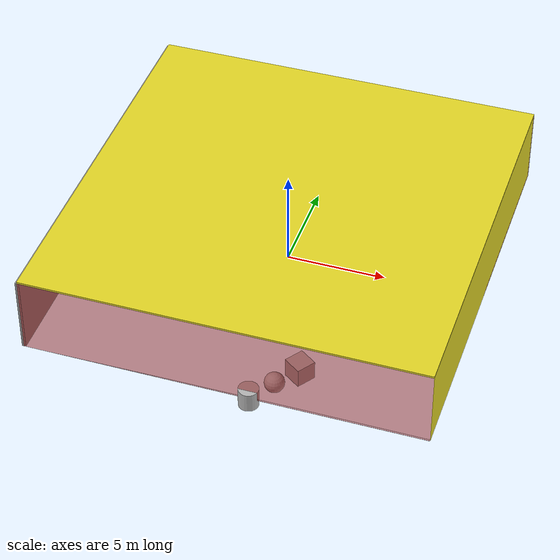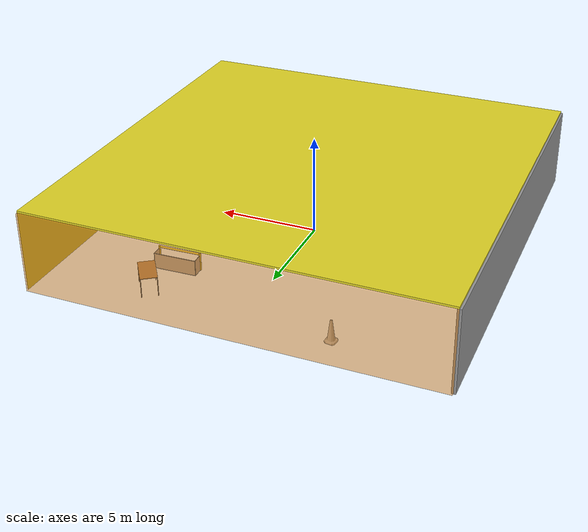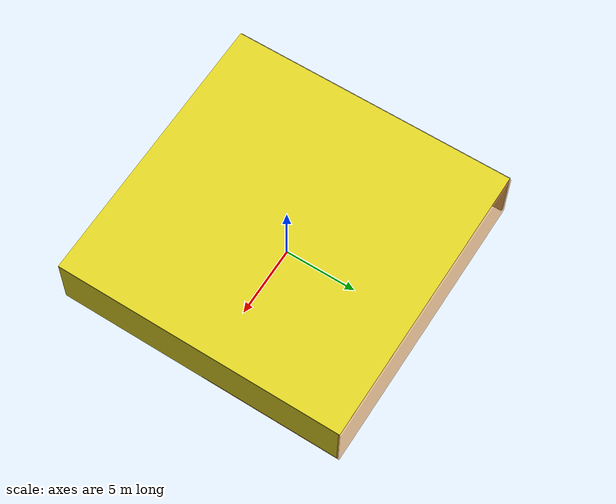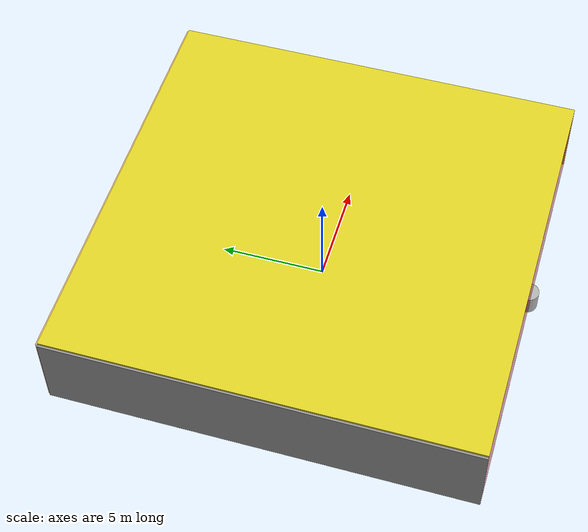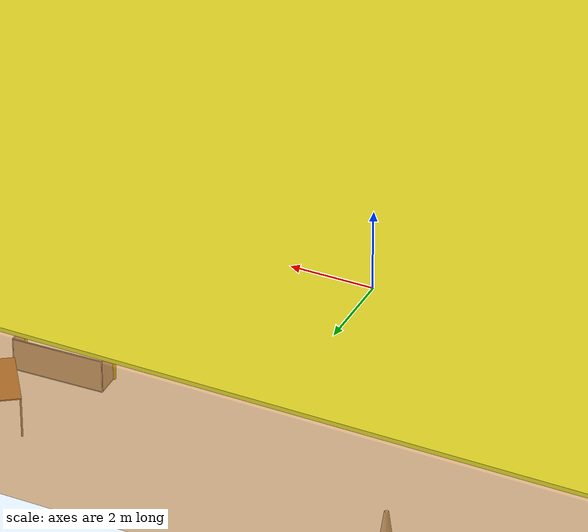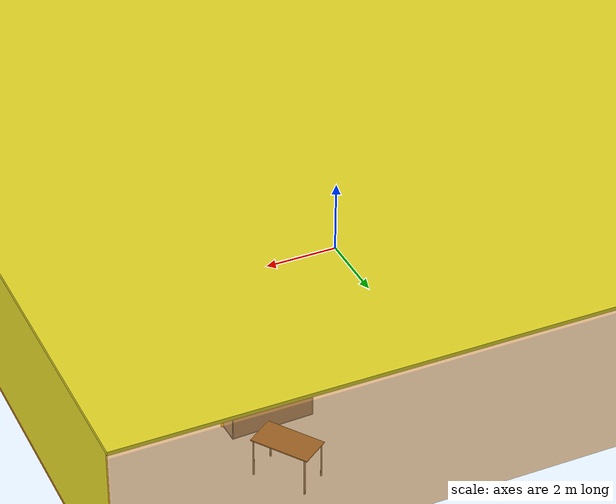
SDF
<sdf version="1.4">
 <world name="default">
  <physics type="ode">
   <max_step_size>0.001</max_step_size>
   <real_time_factor>1</real_time_factor>
   <real_time_update_rate>1000</real_time_update_rate>
   <gravity>0 0 -9.8</gravity>
  </physics>
  <scene><ambient>0.4 0.4 0.4 1</ambient><background>0.7 0.7 0.7 1</background><shadows>1</shadows></scene>
  <model name="Surrounding">
   <static>1</static>
   <link name="Ceiling">
    <collision name="Ceiling_Collision"><geometry><box><size>20 20 0.1</size></box></geometry></collision>
    <visual name="Ceiling_Visual">
     <geometry><box><size>20 20 0.1</size></box></geometry>
     <material>
      <script><uri>file://media/materials/scripts/gazebo.material</uri><name>Gazebo/Yellow</name></script>
     </material>
    </visual>
    <pose>0 0 4.05 0 0 0</pose>
   </link>
   <link name="Wall_South">
    <collision name="Wall_South_Collision">
     <geometry><box><size>20 0 4</size></box></geometry>
     <pose>0 0 2 0 -0 0</pose>
    </collision>
    <visual name="Wall_South_Visual">
     <pose>0 0 2 0 -0 0</pose>
     <geometry><box><size>20 0 4</size></box></geometry>
     <material>
      <script><uri>file://media/materials/scripts/gazebo.material</uri><name>Gazebo/RedTransparent</name></script>
     </material>
    </visual>
    <velocity_decay><linear>0</linear><angular>0</angular></velocity_decay>
    <pose>0 -10 0 0 -0 0</pose>
   </link>
   <link name="Wall_East">
    <collision name="Wall_21_Collision">
     <geometry><box><size>20 0 4</size></box></geometry>
     <pose>0 0 2 0 -0 0</pose>
    </collision>
    <visual name="Wall_21_Visual">
     <pose>0 0 2 0 -0 0</pose>
     <geometry><box><size>20 0 4</size></box></geometry>
     <material>
      <script><uri>file://media/materials/scripts/gazebo.material</uri><name>Gazebo/YellowGlow</name></script>
     </material>
    </visual>
    <velocity_decay><linear>0</linear><angular>0</angular></velocity_decay>
    <pose>10 0 0 0 -0 1.5708</pose>
   </link>
   <link name="Wall_North">
    <collision name="Wall_22_Collision">
     <geometry><box><size>20 0.2 4</size></box></geometry>
     <pose>0 0 2 0 -0 0</pose>
    </collision>
    <visual name="Wall_22_Visual">
     <pose>0 0 2 0 -0 0</pose>
     <geometry><box><size>20 0.2 4</size></box></geometry>
     <material>
      <script>
       <uri>file://media/materials/scripts/gazebo.material</uri>
       <name>Gazebo/OrangeTransparent</name>
      </script>
     </material>
    </visual>
    <velocity_decay><linear>0</linear><angular>0</angular></velocity_decay>
    <pose>0 10 0 0 -0 0</pose>
   </link>
   <link name="Wall_West">
    <collision name="Wall_23_Collision">
     <geometry><box><size>20 0.2 4</size></box></geometry>
     <pose>0 0 2 0 -0 0</pose>
    </collision>
    <visual name="Wall_23_Visual">
     <pose>0 0 2 0 -0 0</pose>
     <geometry><box><size>20 0.2 4</size></box></geometry>
     <material>
      <script><uri>file://media/materials/scripts/gazebo.material</uri><name>Gazebo/GreyGradientSky</name></script>
     </material>
    </visual>
    <velocity_decay><linear>0</linear><angular>0</angular></velocity_decay>
    <pose>-10 0 0 0 0 -1.5708</pose>
   </link>
   <link name="Ground_link">
    <collision name="collision">
     <pose>0 0 .05 0 -0 0</pose>
     <geometry><box><size>20 20 0.1</size></box></geometry>
    </collision>
    <visual name="visual">
     <pose>0 0 .05 0 -0 0</pose>
     <geometry><box><size>20 20 0.1</size></box></geometry>
     <material>
      <script><uri>file://media/materials/scripts/gazebo.material</uri><name>Gazebo/RedTransparent</name></script>
     </material>
    </visual>
   </link>
   <static>1</static>
  </model>
  <spherical_coordinates>
   <surface_model>EARTH_WGS84</surface_model>
   <latitude_deg>0</latitude_deg>
   <longitude_deg>0</longitude_deg>
   <elevation>0</elevation>
   <heading_deg>0</heading_deg>
  </spherical_coordinates>
  <light name="lightball_0" type="diffuse">
   <diffuse>0.8 0.8 0.8 1</diffuse>
   <specular>0.2 0.2 0.2 1</specular>
   <attenuation>
    <range>100</range>
    <constant>0.7</constant>
    <linear>0.01</linear>
    <quadratic>0.001</quadratic>
   </attenuation>
   <direction>-0.5 0.1 -0.9</direction>
   <pose>5.30388405759 -6.22127089845 1.14882936011 0 0 0</pose>
  </light>
  <light name="lightball_1" type="diffuse">
   <diffuse>0.8 0.8 0.8 1</diffuse>
   <specular>0.2 0.2 0.2 1</specular>
   <attenuation>
    <range>100</range>
    <constant>0.7</constant>
    <linear>0.01</linear>
    <quadratic>0.001</quadratic>
   </attenuation>
   <direction>-0.5 0.1 -0.9</direction>
   <pose>-4.18505534235 3.87141775298 1.69824834797 0 0 0</pose>
  </light>
  <include>
   <uri>model://construction_cone</uri>
   <pose>-8.4310269747 0.925335822381 0 0 0 1.48681754329</pose>
  </include>
  <include>
   <uri>model://construction_cone</uri>
   <pose>-4.49926675999 2.62654357599 0 0 0 2.33060826573</pose>
  </include>
  <include>
   <uri>model://construction_cone</uri>
   <pose>-4.24438480994 8.51623000587 0 0 0 3.01570066393</pose>
  </include>
  <include>
   <uri>model://textured_shapes</uri>
   <pose>2.11316378137 -8.61333037941 0 0 0 2.53366421489</pose>
  </include>
  <include>
   <uri>model://robocup_3Dsim_goal</uri>
   <pose>1.92116135344 1.2073280497 0 0 0 1.28890983792</pose>
  </include>
  <include>
   <uri>model://textured_shapes</uri>
   <pose>4.52198335187 1.61187157191 0 0 0 0.566913433774</pose>
  </include>
  <include>
   <uri>model://robocup_3Dsim_goal</uri>
   <pose>4.56469742859 5.52842958027 0 0 0 1.6037163022</pose>
  </include>
  <include><uri>model://table</uri><pose>4.95802989248 7.82195432435 0 0 0 2.17734490802</pose></include>
 </world>
</sdf>

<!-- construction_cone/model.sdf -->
<sdf version="1.5">
  <model name="Construction Cone">
    <link name="link">
      <collision name="collision">
        <geometry>
          <mesh>
            <scale>10 10 10</scale>
            <uri>file://isr-testbed/construction_cone/meshes/construction_cone.dae</uri>
          </mesh>
        </geometry>
      </collision>
      <visual name="visual">
        <geometry>
          <mesh>
            <scale>10 10 10</scale>
            <uri>file://isr-testbed/construction_cone/meshes/construction_cone.dae</uri>
          </mesh>
        </geometry>
      </visual>
    </link>
  </model>
</sdf>

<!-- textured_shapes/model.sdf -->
<sdf version="1.6">
  <model name="textured_shapes">
    <pose>0 0 0.5 0 0 0</pose>
    <link name="box">
      <pose>0 -1.5 0 0 0 0</pose>
      <collision name="collision">
        <geometry>
          <box>
            <size>1 1 1</size>
          </box>
        </geometry>
      </collision>
      <visual name="visual">
        <geometry>
          <box>
            <size>1 1 1</size>
          </box>
        </geometry>
        <material>
          <script>
            <uri>model://../model_source/models/textured_shapes/materials/scripts</uri>
            <uri>model://../model_source/models/textured_shapes/materials/textures</uri>
            <name>TexturedShape/Squares</name>
          </script>
        </material>
      </visual>
    </link>
    <link name="sphere">
      <collision name="collision">
        <geometry>
          <sphere>
            <radius>0.5</radius>
          </sphere>
        </geometry>
      </collision>
      <visual name="visual">
        <geometry>
          <sphere>
            <radius>0.5</radius>
          </sphere>
        </geometry>
        <material>
          <script>
            <uri>model://../model_source/models/textured_shapes/materials/scripts</uri>
            <uri>model://../model_source/models/textured_shapes/materials/textures</uri>
            <name>TexturedShape/Squares</name>
          </script>
        </material>
      </visual>
    </link>
    <link name="cylinder">
      <pose>0 1.5 0 0 0 0</pose>
      <collision name="collision">
        <geometry>
          <cylinder>
            <radius>0.5</radius>
            <length>1</length>
          </cylinder>
        </geometry>
      </collision>
      <visual name="visual">
        <geometry>
          <cylinder>
            <radius>0.5</radius>
            <length>1</length>
          </cylinder>
        </geometry>
        <material>
          <script>
            <uri>model://../model_source/models/textured_shapes/materials/scripts</uri>
            <uri>model://../model_source/models/textured_shapes/materials/textures</uri>
            <name>TexturedShape/Squares</name>
          </script>
        </material>
      </visual>
    </link>
  </model>
</sdf>

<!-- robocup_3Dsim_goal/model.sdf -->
<sdf version="1.5">
  <model name="robocup_3d_goal">
    <static>true</static>
    <link name="left_post">
      <pose>0 1.05 0.45 0 0 0</pose>
      <collision name="collision">
        <geometry>
          <cylinder>
            <radius>0.05</radius>
            <length>0.9</length>
          </cylinder>
        </geometry>
      </collision>
      <visual name="visual">
        <geometry>
          <cylinder>
            <radius>0.05</radius>
            <length>0.9</length>
          </cylinder>
        </geometry>
        <material>
          <script>
            <uri>file://media/materials/scripts/gazebo.material</uri>
            <name>Gazebo/ZincYellow</name>
          </script>
        </material>
      </visual>
    </link>
    <link name="left_support_horiz_lower">
      <pose>0.30 1.05 0.01 0 0 0</pose>
      <collision name="collision">
        <geometry>
          <box>
            <size>0.50 0.02 0.02</size>
          </box>
        </geometry>
      </collision>
      <visual name="visual">
        <geometry>
          <box>
            <size>0.50 0.02 0.02</size>
          </box>
        </geometry>
        <material>
          <script>
            <uri>file://media/materials/scripts/gazebo.material</uri>
            <name>Gazebo/White</name>
          </script>
        </material>
      </visual>
    </link>
    <link name="left_support_horiz_upper">
      <pose>0.30 1.05 0.79 0 0 0</pose>
      <collision name="collision">
        <geometry>
          <box>
            <size>0.50 0.02 0.02</size>
          </box>
        </geometry>
      </collision>
      <visual name="visual">
        <geometry>
          <box>
            <size>0.50 0.02 0.02</size>
          </box>
        </geometry>
        <material>
          <script>
            <uri>file://media/materials/scripts/gazebo.material</uri>
            <name>Gazebo/White</name>
          </script>
        </material>
      </visual>
    </link>
    <link name="left_support_vertical">
      <pose>0.56 1.05 0.4 0 1.5708 0</pose>
      <collision name="collision">
        <geometry>
          <box>
            <size>0.80 0.02 0.02</size>
          </box>
        </geometry>
      </collision>
      <visual name="visual">
        <geometry>
          <box>
            <size>0.80 0.02 0.02</size>
          </box>
        </geometry>
        <material>
          <script>
            <uri>file://media/materials/scripts/gazebo.material</uri>
            <name>Gazebo/White</name>
          </script>
        </material>
      </visual>
    </link>
    <link name="right_support_horiz_lower">
      <pose>0.30 -1.05 0.01 0 0 0</pose>
      <collision name="collision">
        <geometry>
          <box>
            <size>0.50 0.02 0.02</size>
          </box>
        </geometry>
      </collision>
      <visual name="visual">
        <geometry>
          <box>
            <size>0.50 0.02 0.02</size>
          </box>
        </geometry>
        <material>
          <script>
            <uri>file://media/materials/scripts/gazebo.material</uri>
            <name>Gazebo/White</name>
          </script>
        </material>
      </visual>
    </link>
    <link name="right_support_horiz_upper">
      <pose>0.30 -1.05 0.79 0 0 0</pose>
      <collision name="collision">
        <geometry>
          <box>
            <size>0.50 0.02 0.02</size>
          </box>
        </geometry>
      </collision>
      <visual name="visual">
        <geometry>
          <box>
            <size>0.50 0.02 0.02</size>
          </box>
        </geometry>
        <material>
          <script>
            <uri>file://media/materials/scripts/gazebo.material</uri>
            <name>Gazebo/White</name>
          </script>
        </material>
      </visual>
    </link>
    <link name="right_support_vertical">
      <pose>0.56 -1.05 0.4 0 1.5708 0</pose>
      <collision name="collision">
        <geometry>
          <box>
            <size>0.80 0.02 0.02</size>
          </box>
        </geometry>
      </collision>
      <visual name="visual">
        <geometry>
          <box>
            <size>0.80 0.02 0.02</size>
          </box>
        </geometry>
        <material>
          <script>
            <uri>file://media/materials/scripts/gazebo.material</uri>
            <name>Gazebo/White</name>
          </script>
        </material>
      </visual>
    </link>
    <link name="center_support_horiz_lower">
      <pose>0.56 0 0.01 0 1.5708 0</pose>
      <collision name="collision">
        <geometry>
          <box>
            <size>0.02 2.08 0.02</size>
          </box>
        </geometry>
      </collision>
      <visual name="visual">
        <geometry>
          <box>
            <size>0.02 2.08 0.02</size>
          </box>
        </geometry>
        <material>
          <script>
            <uri>file://media/materials/scripts/gazebo.material</uri>
            <name>Gazebo/White</name>
          </script>
        </material>
      </visual>
    </link>
    <link name="center_support_horiz_upper">
      <pose>0.56 0 0.79 0 1.5708 0</pose>
      <collision name="collision">
        <geometry>
          <box>
            <size>0.02 2.08 0.02</size>
          </box>
        </geometry>
      </collision>
      <visual name="visual">
        <geometry>
          <box>
            <size>0.02 2.08 0.02</size>
          </box>
        </geometry>
        <material>
          <script>
            <uri>file://media/materials/scripts/gazebo.material</uri>
            <name>Gazebo/White</name>
          </script>
        </material>
      </visual>
    </link>
    <link name="right_post">
      <pose>0 -1.05 0.45 0 0 0</pose>
      <collision name="collision">
        <geometry>
          <cylinder>
            <radius>0.05</radius>
            <length>0.9</length>
          </cylinder>
        </geometry>
      </collision>
      <visual name="visual">
        <geometry>
          <cylinder>
            <radius>0.05</radius>
            <length>0.9</length>
          </cylinder>
        </geometry>
        <material>
          <script>
            <uri>file://media/materials/scripts/gazebo.material</uri>
            <name>Gazebo/ZincYellow</name>
          </script>
        </material>
      </visual>
    </link>
    <link name="crossbar">
      <pose>0 0 0.85 1.57 1.57 0</pose>
      <collision name="collision">
        <geometry>
          <cylinder>
            <radius>0.05</radius>
            <length>2.0</length>
          </cylinder>
        </geometry>
      </collision>
      <visual name="visual">
        <geometry>
          <cylinder>
            <radius>0.05</radius>
            <length>2.0</length>
          </cylinder>
        </geometry>
        <material>
          <script>
            <uri>file://media/materials/scripts/gazebo.material</uri>
            <name>Gazebo/ZincYellow</name>
          </script>
        </material>
      </visual>
    </link>
    <link name="center_net">
      <pose>0.56 0 0.40 0 0 0</pose>
      <collision name="collision">
        <geometry>
          <box>
            <size>0.01 2.1 0.80</size>
          </box>
        </geometry>
      </collision>
      <visual name="visual">
        <geometry>
          <box>
            <size>0.01 2.1 0.80</size>
          </box>
        </geometry>
        <material>
          <script>
            <uri>model://../model_source/models/robocup09_spl_field/materials/scripts/</uri>
            <uri>model://../model_source/models/robocup09_spl_field/materials/textures/</uri>
            <name>RoboCup/Net</name>
          </script>
        </material>
      </visual>
    </link>
    <link name="left_net">
      <pose>0.30 1.05 0.40 0 0 0</pose>
      <collision name="collision">
        <geometry>
          <box>
            <size>0.50 0.01 0.76</size>
          </box>
        </geometry>
      </collision>
      <visual name="visual">
        <geometry>
          <box>
            <size>0.50 0.01 0.76</size>
          </box>
        </geometry>
        <material>
          <script>
            <uri>model://../model_source/models/robocup09_spl_field/materials/scripts/</uri>
            <uri>model://../model_source/models/robocup09_spl_field/materials/textures/</uri>
            <name>RoboCup/Net</name>
          </script>
        </material>
      </visual>
    </link>
    <link name="right_net">
      <pose>0.30 -1.05 0.40 0 0 0</pose>
      <collision name="collision">
        <geometry>
          <box>
            <size>0.50 0.01 0.76</size>
          </box>
        </geometry>
      </collision>
      <visual name="visual">
        <geometry>
          <box>
            <size>0.50 0.01 0.76</size>
          </box>
        </geometry>
        <material>
          <script>
            <uri>model://../model_source/models/robocup09_spl_field/materials/scripts/</uri>
            <uri>model://../model_source/models/robocup09_spl_field/materials/textures/</uri>
            <name>RoboCup/Net</name>
          </script>
        </material>
      </visual>
    </link>
  </model>
</sdf>

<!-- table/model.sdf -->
<sdf version="1.5">
  <model name="table">
    <static>true</static>
    <link name="link">
      <collision name="surface">
        <pose>0 0 1.0 0 0 0</pose>
        <geometry>
          <box>
            <size>1.5 0.8 0.03</size>
          </box>
        </geometry>
        <surface>
          <friction>
            <ode>
              <mu>0.6</mu>
              <mu2>0.6</mu2>
            </ode>
          </friction>
        </surface>
      </collision>
      <visual name="visual1">
        <pose>0 0 1.0 0 0 0</pose>
        <geometry>
          <box>
            <size>1.5 0.8 0.03</size>
          </box>
        </geometry>
        <material>
          <script>
            <uri>model://media/materials/scripts/gazebo.material</uri>
            <name>Gazebo/Wood</name>
          </script>
        </material>
      </visual>
      <collision name="front_left_leg">
        <pose>0.68 0.38 0.5 0 0 0</pose>
        <geometry>
          <cylinder>
            <radius>0.02</radius>
            <length>1.0</length>
          </cylinder>
        </geometry>
      </collision>
      <visual name="front_left_leg">
        <pose>0.68 0.38 0.5 0 0 0</pose>
        <geometry>
          <cylinder>
            <radius>0.02</radius>
            <length>1.0</length>
          </cylinder>
        </geometry>
        <material>
          <script>
            <uri>model://media/materials/scripts/gazebo.material</uri>
            <name>Gazebo/Grey</name>
          </script>
        </material>
      </visual>
      <collision name="front_right_leg">
        <pose>0.68 -0.38 0.5 0 0 0</pose>
        <geometry>
          <cylinder>
            <radius>0.02</radius>
            <length>1.0</length>
          </cylinder>
        </geometry>
      </collision>
      <visual name="front_right_leg">
        <pose>0.68 -0.38 0.5 0 0 0</pose>
        <geometry>
          <cylinder>
            <radius>0.02</radius>
            <length>1.0</length>
          </cylinder>
        </geometry>
        <material>
          <script>
            <uri>model://media/materials/scripts/gazebo.material</uri>
            <name>Gazebo/Grey</name>
          </script>
        </material>
      </visual>
      <collision name="back_right_leg">
        <pose>-0.68 -0.38 0.5 0 0 0</pose>
        <geometry>
          <cylinder>
            <radius>0.02</radius>
            <length>1.0</length>
          </cylinder>
        </geometry>
      </collision>
      <visual name="back_right_leg">
        <pose>-0.68 -0.38 0.5 0 0 0</pose>
        <geometry>
          <cylinder>
            <radius>0.02</radius>
            <length>1.0</length>
          </cylinder>
        </geometry>
        <material>
          <script>
            <uri>model://media/materials/scripts/gazebo.material</uri>
            <name>Gazebo/Grey</name>
          </script>
        </material>
      </visual>
      <collision name="back_left_leg">
        <pose>-0.68 0.38 0.5 0 0 0</pose>
        <geometry>
          <cylinder>
            <radius>0.02</radius>
            <length>1.0</length>
          </cylinder>
        </geometry>
      </collision>
      <visual name="back_left_leg">
        <pose>-0.68 0.38 0.5 0 0 0</pose>
        <geometry>
          <cylinder>
            <radius>0.02</radius>
            <length>1.0</length>
          </cylinder>
        </geometry>
        <material>
          <script>
            <uri>model://media/materials/scripts/gazebo.material</uri>
            <name>Gazebo/Grey</name>
          </script>
        </material>
      </visual>
    </link>
  </model>
</sdf>
